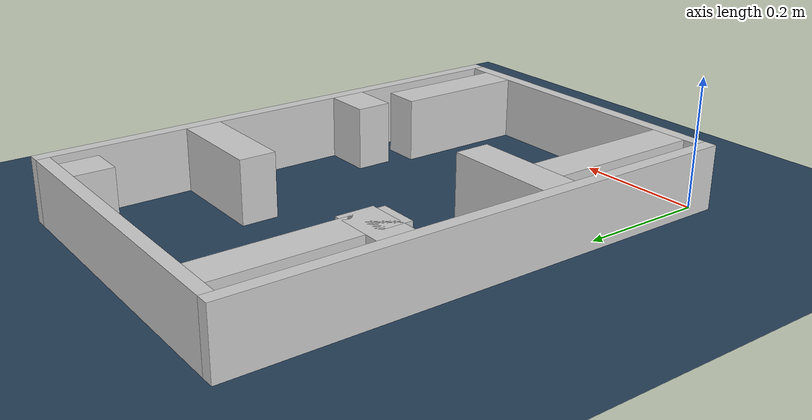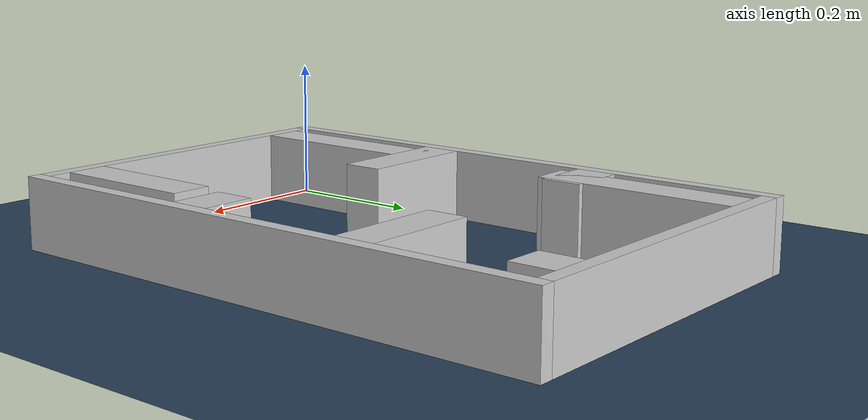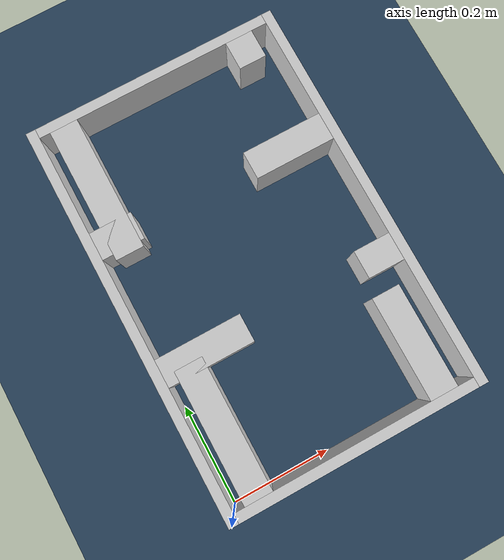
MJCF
<?xml version="1.0" ?>
<mujoco model="generated_real_template">
  <compiler angle="degree"/>
  <option timestep="0.002" integrator="implicitfast" iterations="100" cone="elliptic"/>
  <default>
    <geom density="1"/>
  </default>
  <asset>
    <texture builtin="gradient" height="3072" rgb1="0.3 0.5 0.7" rgb2="0 0 0" type="skybox" width="512"/>
    <texture builtin="checker" height="300" mark="edge" markrgb="0.8 0.8 0.8" name="groundplane" rgb1="0.2 0.3 0.4" rgb2="0.1 0.2 0.3" type="2d" width="300"/>
    <material name="groundplane" reflectance="0.2" texrepeat="5 5" texture="groundplane" texuniform="true"/>
  </asset>
  <worldbody>
    <light dir="0 0 -1" directional="true" pos="0 0 1.5"/>
    <geom name="floor" type="plane" condim="4" friction="0.5 0.005 0.001" material="groundplane" size="0 0 0.05"/>
    <body name="walls">
      <geom name="wall_boundary_left" type="box" condim="4" friction="1.0 0.005 0.0001" rgba="0.8 0.8 0.8 1" pos="-0.010000 0.387500 0.050000" euler="0 0 0.000000" size="0.010000 0.407500 0.050000"/>
      <geom name="wall_boundary_right" type="box" condim="4" friction="1.0 0.005 0.0001" rgba="0.8 0.8 0.8 1" pos="0.500000 0.387500 0.050000" euler="0 0 0.000000" size="0.010000 0.407500 0.050000"/>
      <geom name="wall_boundary_bottom" type="box" condim="4" friction="1.0 0.005 0.0001" rgba="0.8 0.8 0.8 1" pos="0.245000 -0.010000 0.050000" euler="0 0 0.000000" size="0.245000 0.010000 0.050000"/>
      <geom name="wall_boundary_top" type="box" condim="4" friction="1.0 0.005 0.0001" rgba="0.8 0.8 0.8 1" pos="0.245000 0.785000 0.050000" euler="0 0 0.000000" size="0.245000 0.010000 0.050000"/>
      <geom name="wall_inner_1_1" type="box" condim="4" friction="1.0 0.005 0.0001" rgba="0.8 0.8 0.8 1" pos="0.087714 0.272832 0.050000" euler="0 0 0.000000" size="0.087714 0.028500 0.050000"/>
      <geom name="wall_inner_1_2" type="box" condim="4" friction="1.0 0.005 0.0001" rgba="0.8 0.8 0.8 1" pos="0.452521 0.272832 0.050000" euler="0 0 0.000000" size="0.037479 0.028500 0.050000"/>
      <geom name="wall_inner_2_1" type="box" condim="4" friction="1.0 0.005 0.0001" rgba="0.8 0.8 0.8 1" pos="0.050291 0.133098 0.050000" euler="0 0 90.000000" size="0.133098 0.028500 0.050000"/>
      <geom name="wall_inner_2_2" type="box" condim="4" friction="1.0 0.005 0.0001" rgba="0.8 0.8 0.8 1" pos="0.050291 0.635511 0.050000" euler="0 0 90.000000" size="0.139489 0.028500 0.050000"/>
      <geom name="wall_inner_3_1" type="box" condim="4" friction="1.0 0.005 0.0001" rgba="0.8 0.8 0.8 1" pos="0.043440 0.536977 0.050000" euler="0 0 0.000000" size="0.043440 0.028500 0.050000"/>
      <geom name="wall_inner_3_2" type="box" condim="4" friction="1.0 0.005 0.0001" rgba="0.8 0.8 0.8 1" pos="0.407837 0.536977 0.050000" euler="0 0 0.000000" size="0.082163 0.028500 0.050000"/>
      <geom name="wall_inner_4_1" type="box" condim="4" friction="1.0 0.005 0.0001" rgba="0.8 0.8 0.8 1" pos="0.429120 0.104736 0.050000" euler="0 0 90.000000" size="0.104736 0.028500 0.050000"/>
      <geom name="wall_inner_4_2" type="box" condim="4" friction="1.0 0.005 0.0001" rgba="0.8 0.8 0.8 1" pos="0.429120 0.745610 0.050000" euler="0 0 90.000000" size="0.029390 0.028500 0.050000"/>
    </body>
  </worldbody>
</mujoco>
